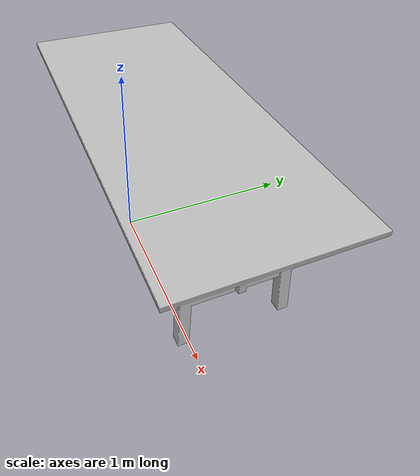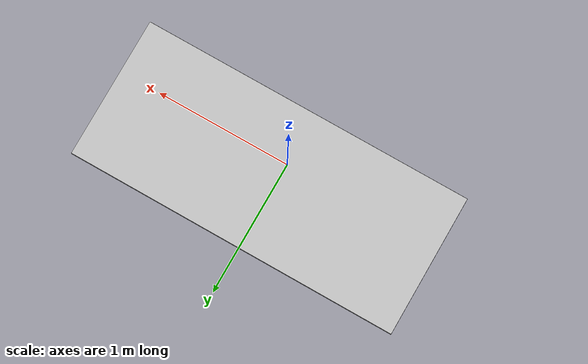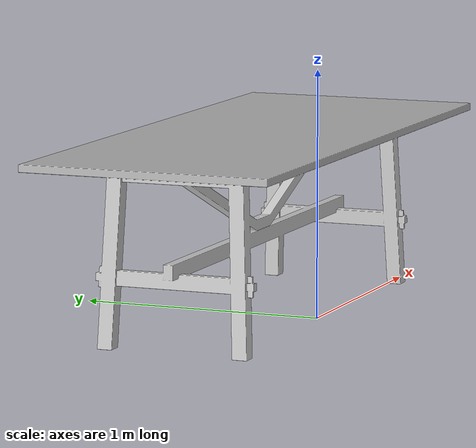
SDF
<?xml version="1.0"?>
<sdf version="1.7">
  <model name="modern_table">
    <static>true</static>
    <link name="link">
      <pose>0 0.25 0.74 0 0 0</pose>

      <collision name="surface">
        <pose>0 0 -0.015 0 0 0</pose>
        <geometry>
          <box>
            <size>2.35 1 0.03</size>
          </box>
        </geometry>
      </collision>

      <visual name="visual">
        <geometry>
          <mesh>
            <uri>model://modern_table/meshes/modern_table.dae</uri>
          </mesh>
        </geometry>
        <light type="directional" name="some_light">
          <diffuse>0.7 0.7 0.7 0</diffuse>
          <specular>1 1 1 0</specular>
          <direction>-1 -1 -1</direction>
        </light>
      </visual>
    </link>
  </model>
</sdf>
